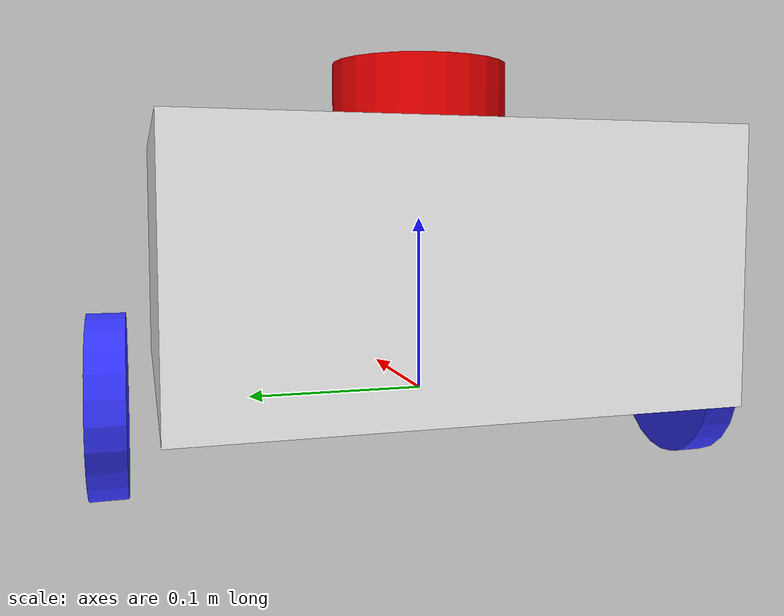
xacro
<?xml version="1.0"?>
<robot xmlns:xacro="http://www.ros.org/wiki/xacro" >

    <xacro:include filename="inertial_macros.xacro"/>
    <xacro:include filename="lidar.xacro"/>
    <xacro:include filename="camera.xacro"/>

    <material name="white">
        <color rgba="1 1 1 1" />
    </material>

    <material name="orange">
        <color rgba="1 0.3 0.1 1" />
    </material>

    <material name="blue">
        <color rgba="0.2 0.2 1 1" />
    </material>

    <material name="black">
        <color rgba="0 0 0 1" />
    </material>

    <material name="red">
        <color rgba="1 0 0 1" />
    </material>

    <!-- BASE LINK -->

    <link name="base_link">

    </link>

    <!-- CHASSIS LINK -->

    <joint name="chassis_joint" type="fixed">
        <parent link="base_link"/>
        <child link="chassis"/>
        <origin xyz="-0.1 0 0"/>
    </joint>

    <link name="chassis">
        <visual>
            <origin xyz="0.15 0 0.075"/>
            <geometry>
                <box size="0.3 0.3 0.15"/>
            </geometry>
            <material name="white"/>
        </visual>
        <collision>
            <origin xyz="0.15 0 0.075"/>
            <geometry>
                <box size="0.3 0.3 0.15"/>
            </geometry>
        </collision>
        <xacro:inertial_box mass="0.5" x="0.3" y="0.3" z="0.15">
            <origin xyz="0.15 0 0.075" rpy="0 0 0"/>
        </xacro:inertial_box>
    </link>

    <!-- LEFT WHEEL LINK -->

    <joint name="left_wheel_joint" type="continuous">
        <parent link="chassis"/>
        <child link="left_wheel"/>
        <origin xyz="0.1 0.175 0" rpy="-${pi/2} 0 0"/>
        <axis xyz="0 0 1"/>
    </joint>

    <link name="left_wheel">
        <visual>
            <geometry>
                <cylinder radius="0.05" length="0.02"/>
            </geometry>
            <material name="blue"/>
        </visual>
        <collision>
            <geometry>
                <cylinder radius="0.05" length="0.02"/>
            </geometry>
        </collision>
        <xacro:inertial_cylinder mass="0.1" length="0.04" radius="0.05">
            <origin xyz="0 0 0" rpy="0 0 0"/>
        </xacro:inertial_cylinder>
    </link>

    <!-- RIGHT WHEEL LINK -->

    <joint name="right_wheel_joint" type="continuous">
        <parent link="chassis"/>
        <child link="right_wheel"/>
        <origin xyz="0.1 -0.175 0" rpy="${pi/2} 0 0"/>
        <axis xyz="0 0 -1"/>
    </joint>

    <link name="right_wheel">
        <visual>
            <geometry>
                <cylinder radius="0.05" length="0.02"/>
            </geometry>
            <material name="blue"/>
        </visual>
        <collision>
            <geometry>
                <cylinder radius="0.05" length="0.02"/>
            </geometry>
        </collision>
        <xacro:inertial_cylinder mass="0.1" length="0.04" radius="0.05">
            <origin xyz="0 0 0" rpy="0 0 0"/>
        </xacro:inertial_cylinder>
    </link>

    <!-- CASTER WHEEL LINK -->

    <joint name="caster_wheel_joint" type="fixed">
        <parent link="chassis"/>
        <child link="caster_wheel"/>
        <origin xyz="0.24 0 0"/>
    </joint>

    <link name="caster_wheel">
        <visual>
            <geometry>
                <sphere radius="0.05"/>
            </geometry>
            <material name="black"/>
        </visual>
        <collision>
            <geometry>
                <sphere radius="0.05"/>
            </geometry>
        </collision>
        <xacro:inertial_sphere mass="0.1" radius="0.05">
            <origin xyz="0 0 0" rpy="0 0 0"/>
        </xacro:inertial_sphere>
    </link>

</robot>

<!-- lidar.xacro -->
<robot xmlns:xacro="http://www.ros.org/wiki/xacro" >

    <joint name ="laser joint" type="fixed">
        <parent link="chassis"/>
        <child link="laser_frame"/>
        <origin xyz="0.1 0 0.168" rpy="0 0 0"/>
    </joint>

    <link name="laser_frame">
        <visual>
            <geometry>
                <cylinder radius="0.05" length="0.04"/>
            </geometry>
            <material name="red"/>
        </visual>
        <collision>
            <geometry>
                <cylinder radius="0.05" length="0.04"/>
            </geometry>
        </collision>
        <xacro:inertial_cylinder mass="0.1" length="0.04" radius="0.05">
            <origin xyz="0 0 0" rpy="0 0 0"/>
        </xacro:inertial_cylinder>
    </link>

</robot>

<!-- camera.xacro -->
<robot xmlns:xacro="http://www.ros.org/wiki/xacro" >

    <joint name ="camera joint" type="fixed">
        <parent link="chassis"/>
        <child link="camera_link"/>
        <origin xyz="0.305 0 0.08" rpy="0 0 0"/>
    </joint>

    <link name="camera_link">
        <visual>
            <geometry>
                <box size="0.01 0.03 0.03" length="0.04"/>
            </geometry>
            <material name="red"/>
        </visual>
    </link>

    <joint name ="camera optical_joint" type="fixed">
        <parent link="camera_link"/>
        <child link="camera_link_optical"/>
        <origin xyz="0 0 0" rpy="${-pi/2} 0 ${-pi/2}"/>
    </joint>

    <link name="camera_link_optical"></link>

</robot>
